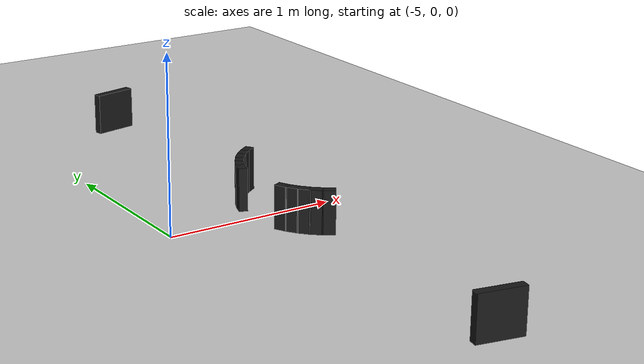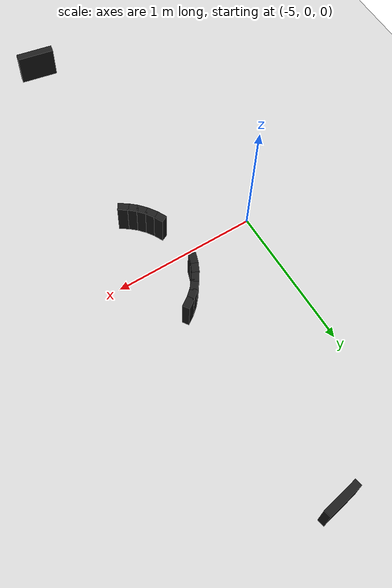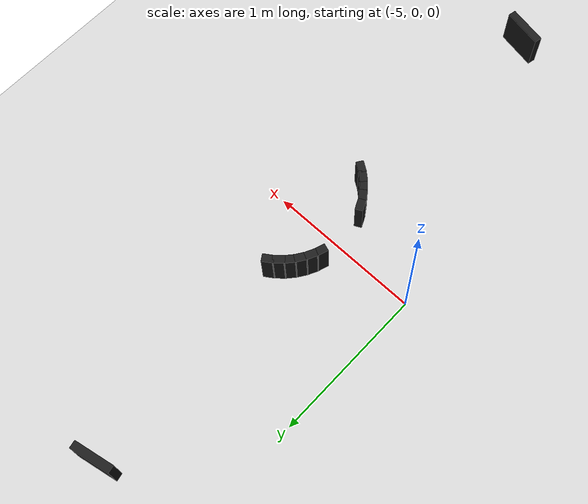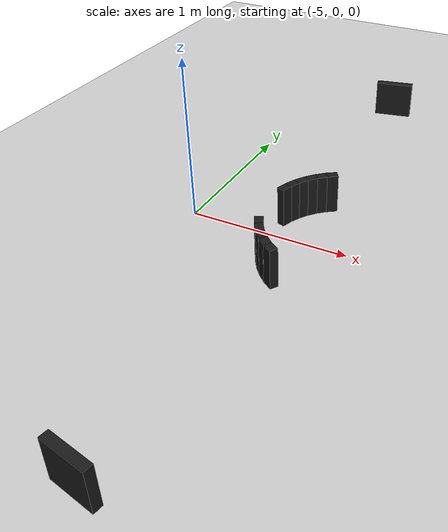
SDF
<sdf version="1.6">
 <world name="button_track">
  <include><uri>model://sun</uri></include>
  <include><uri>model://ground_plane</uri></include>
  <model name="wall_left_outer_49">
   <static>true</static>
   <pose>-4.372058 -1.870463 0.125000 0 0 2.945243</pose>
   <link name="link">
    <collision name="collision">
     <geometry><box><size>0.259997 0.050000 0.250000</size></box></geometry>
    </collision>
    <visual name="visual">
     <geometry><box><size>0.259997 0.050000 0.250000</size></box></geometry>
     <material>
      <ambient>0.1 0.1 0.1 1</ambient>
      <diffuse>0.1 0.1 0.1 1</diffuse>
      <specular>0.2 0.2 0.2 1</specular>
     </material>
    </visual>
   </link>
  </model>
  <model name="wall_left_outer_70">
   <static>true</static>
   <pose>-4.372058 1.870463 0.125000 0 0 0.196350</pose>
   <link name="link">
    <collision name="collision">
     <geometry><box><size>0.259997 0.050000 0.250000</size></box></geometry>
    </collision>
    <visual name="visual">
     <geometry><box><size>0.259997 0.050000 0.250000</size></box></geometry>
     <material>
      <ambient>0.1 0.1 0.1 1</ambient>
      <diffuse>0.1 0.1 0.1 1</diffuse>
      <specular>0.2 0.2 0.2 1</specular>
     </material>
    </visual>
   </link>
  </model>
  <model name="wall_left_inner_76">
   <static>true</static>
   <pose>-4.270981 -0.405552 0.125000 0 0 2.552544</pose>
   <link name="link">
    <collision name="collision">
     <geometry><box><size>0.073938 0.050000 0.250000</size></box></geometry>
    </collision>
    <visual name="visual">
     <geometry><box><size>0.073938 0.050000 0.250000</size></box></geometry>
     <material>
      <ambient>0.1 0.1 0.1 1</ambient>
      <diffuse>0.1 0.1 0.1 1</diffuse>
      <specular>0.2 0.2 0.2 1</specular>
     </material>
    </visual>
   </link>
  </model>
  <model name="wall_left_inner_77">
   <static>true</static>
   <pose>-4.321598 -0.366712 0.125000 0 0 2.421644</pose>
   <link name="link">
    <collision name="collision">
     <geometry><box><size>0.073938 0.050000 0.250000</size></box></geometry>
    </collision>
    <visual name="visual">
     <geometry><box><size>0.073938 0.050000 0.250000</size></box></geometry>
     <material>
      <ambient>0.1 0.1 0.1 1</ambient>
      <diffuse>0.1 0.1 0.1 1</diffuse>
      <specular>0.2 0.2 0.2 1</specular>
     </material>
    </visual>
   </link>
  </model>
  <model name="wall_left_inner_78">
   <static>true</static>
   <pose>-4.366712 -0.321598 0.125000 0 0 2.290745</pose>
   <link name="link">
    <collision name="collision">
     <geometry><box><size>0.073938 0.050000 0.250000</size></box></geometry>
    </collision>
    <visual name="visual">
     <geometry><box><size>0.073938 0.050000 0.250000</size></box></geometry>
     <material>
      <ambient>0.1 0.1 0.1 1</ambient>
      <diffuse>0.1 0.1 0.1 1</diffuse>
      <specular>0.2 0.2 0.2 1</specular>
     </material>
    </visual>
   </link>
  </model>
  <model name="wall_left_inner_79">
   <static>true</static>
   <pose>-4.405552 -0.270981 0.125000 0 0 2.159845</pose>
   <link name="link">
    <collision name="collision">
     <geometry><box><size>0.073938 0.050000 0.250000</size></box></geometry>
    </collision>
    <visual name="visual">
     <geometry><box><size>0.073938 0.050000 0.250000</size></box></geometry>
     <material>
      <ambient>0.1 0.1 0.1 1</ambient>
      <diffuse>0.1 0.1 0.1 1</diffuse>
      <specular>0.2 0.2 0.2 1</specular>
     </material>
    </visual>
   </link>
  </model>
  <model name="wall_left_inner_80">
   <static>true</static>
   <pose>-4.437453 -0.215728 0.125000 0 0 2.028945</pose>
   <link name="link">
    <collision name="collision">
     <geometry><box><size>0.073938 0.050000 0.250000</size></box></geometry>
    </collision>
    <visual name="visual">
     <geometry><box><size>0.073938 0.050000 0.250000</size></box></geometry>
     <material>
      <ambient>0.1 0.1 0.1 1</ambient>
      <diffuse>0.1 0.1 0.1 1</diffuse>
      <specular>0.2 0.2 0.2 1</specular>
     </material>
    </visual>
   </link>
  </model>
  <model name="wall_left_inner_86">
   <static>true</static>
   <pose>-4.461868 0.156783 0.125000 0 0 1.243547</pose>
   <link name="link">
    <collision name="collision">
     <geometry><box><size>0.073938 0.050000 0.250000</size></box></geometry>
    </collision>
    <visual name="visual">
     <geometry><box><size>0.073938 0.050000 0.250000</size></box></geometry>
     <material>
      <ambient>0.1 0.1 0.1 1</ambient>
      <diffuse>0.1 0.1 0.1 1</diffuse>
      <specular>0.2 0.2 0.2 1</specular>
     </material>
    </visual>
   </link>
  </model>
  <model name="wall_left_inner_87">
   <static>true</static>
   <pose>-4.437453 0.215728 0.125000 0 0 1.112647</pose>
   <link name="link">
    <collision name="collision">
     <geometry><box><size>0.073938 0.050000 0.250000</size></box></geometry>
    </collision>
    <visual name="visual">
     <geometry><box><size>0.073938 0.050000 0.250000</size></box></geometry>
     <material>
      <ambient>0.1 0.1 0.1 1</ambient>
      <diffuse>0.1 0.1 0.1 1</diffuse>
      <specular>0.2 0.2 0.2 1</specular>
     </material>
    </visual>
   </link>
  </model>
  <model name="wall_left_inner_88">
   <static>true</static>
   <pose>-4.405552 0.270981 0.125000 0 0 0.981748</pose>
   <link name="link">
    <collision name="collision">
     <geometry><box><size>0.073938 0.050000 0.250000</size></box></geometry>
    </collision>
    <visual name="visual">
     <geometry><box><size>0.073938 0.050000 0.250000</size></box></geometry>
     <material>
      <ambient>0.1 0.1 0.1 1</ambient>
      <diffuse>0.1 0.1 0.1 1</diffuse>
      <specular>0.2 0.2 0.2 1</specular>
     </material>
    </visual>
   </link>
  </model>
  <model name="wall_left_inner_89">
   <static>true</static>
   <pose>-4.366712 0.321598 0.125000 0 0 0.850848</pose>
   <link name="link">
    <collision name="collision">
     <geometry><box><size>0.073938 0.050000 0.250000</size></box></geometry>
    </collision>
    <visual name="visual">
     <geometry><box><size>0.073938 0.050000 0.250000</size></box></geometry>
     <material>
      <ambient>0.1 0.1 0.1 1</ambient>
      <diffuse>0.1 0.1 0.1 1</diffuse>
      <specular>0.2 0.2 0.2 1</specular>
     </material>
    </visual>
   </link>
  </model>
  <model name="wall_left_inner_90">
   <static>true</static>
   <pose>-4.321598 0.366712 0.125000 0 0 0.719948</pose>
   <link name="link">
    <collision name="collision">
     <geometry><box><size>0.073938 0.050000 0.250000</size></box></geometry>
    </collision>
    <visual name="visual">
     <geometry><box><size>0.073938 0.050000 0.250000</size></box></geometry>
     <material>
      <ambient>0.1 0.1 0.1 1</ambient>
      <diffuse>0.1 0.1 0.1 1</diffuse>
      <specular>0.2 0.2 0.2 1</specular>
     </material>
    </visual>
   </link>
  </model>
  <model name="wall_left_inner_91">
   <static>true</static>
   <pose>-4.270981 0.405552 0.125000 0 0 0.589049</pose>
   <link name="link">
    <collision name="collision">
     <geometry><box><size>0.073938 0.050000 0.250000</size></box></geometry>
    </collision>
    <visual name="visual">
     <geometry><box><size>0.073938 0.050000 0.250000</size></box></geometry>
     <material>
      <ambient>0.1 0.1 0.1 1</ambient>
      <diffuse>0.1 0.1 0.1 1</diffuse>
      <specular>0.2 0.2 0.2 1</specular>
     </material>
    </visual>
   </link>
  </model>
 </world>
</sdf>
